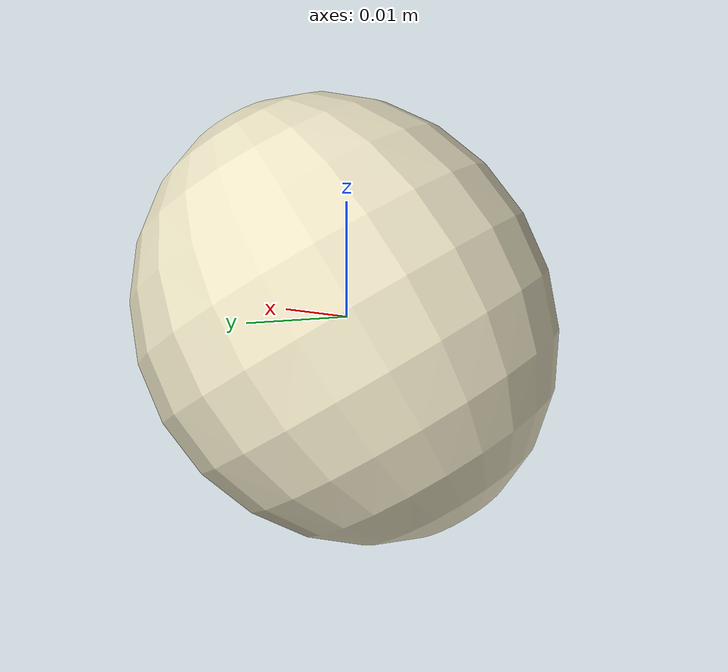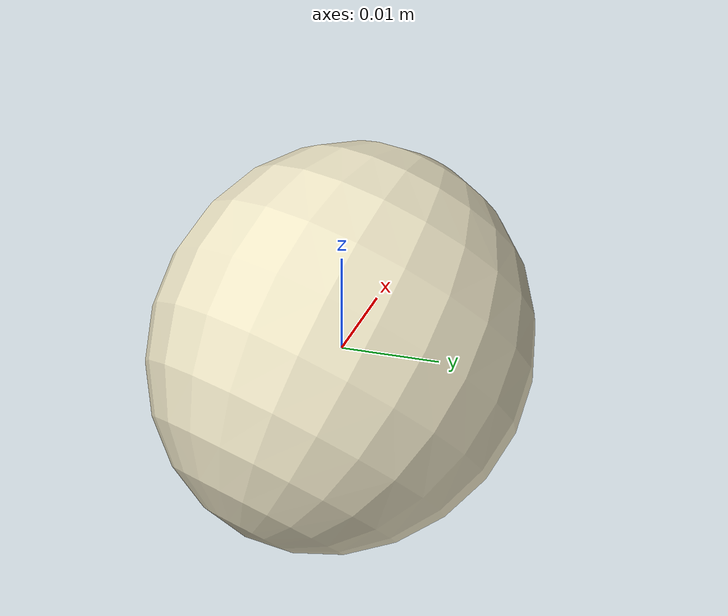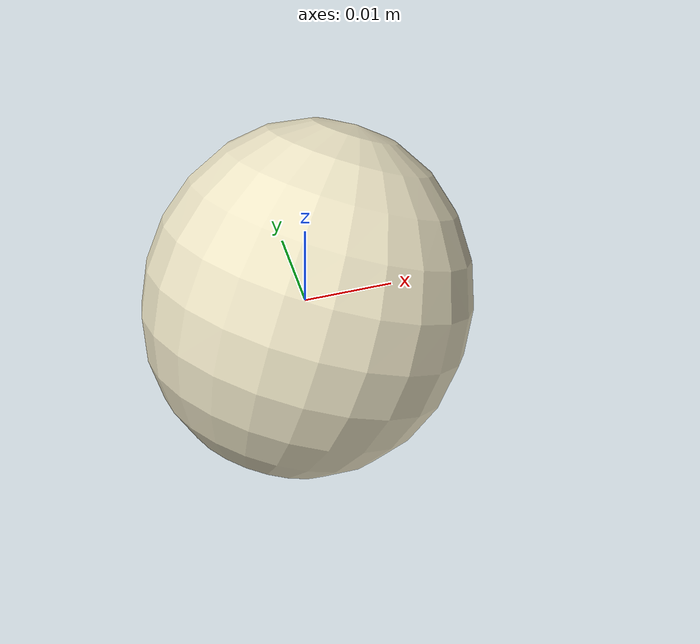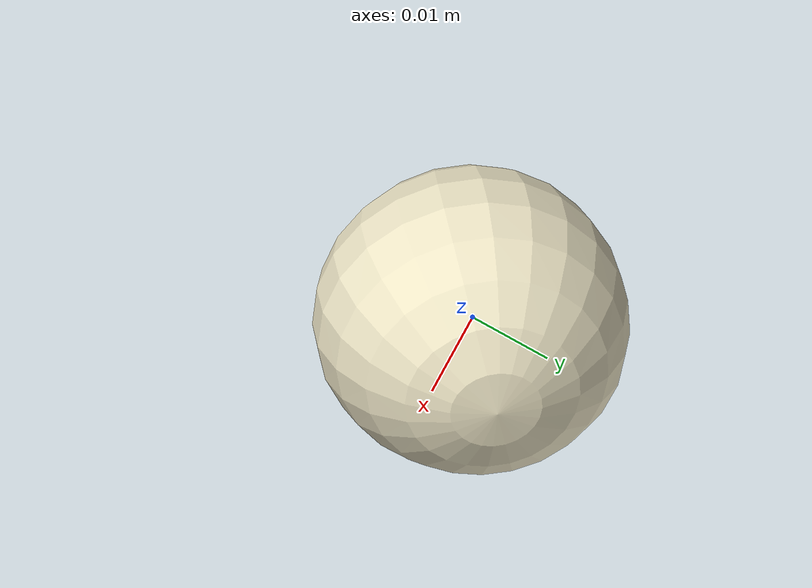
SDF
<?xml version="1.0"?>
<sdf version="1.7">
  <model name="cotton_pick_C_02">
    <static>false</static>
    <allow_auto_disable>false</allow_auto_disable>
    <link name="cotton_pick_C_02_link">
      <gravity>false</gravity>
      <self_collide>false</self_collide>
      <inertial>
        <mass>0.01200</mass>
        <inertia>
          <ixx>0.00000149</ixx>
          <iyy>0.00000149</iyy>
          <izz>0.00000149</izz>
          <ixy>0</ixy>
          <ixz>0</ixz>
          <iyz>0</iyz>
        </inertia>
      </inertial>
      <visual name="cotton_pick_C_02_visual">
        <geometry>
          <mesh>
            <uri>model://cotton_pick_C_02/meshes/cotton_pick_C_02.dae</uri>
          </mesh>
        </geometry>
      </visual>
      <collision name="cotton_pick_C_02_sphere_collision">
        <geometry>
          <sphere>
            <radius>0.01763</radius>
          </sphere>
        </geometry>
        <surface>
          <friction>
            <ode>
              <mu>1.6</mu>
              <mu2>1.6</mu2>
            </ode>
          </friction>
          <contact>
            <ode>
              <kp>8000</kp>
              <kd>80</kd>
            </ode>
          </contact>
        </surface>
      </collision>
    </link>
  </model>
</sdf>
